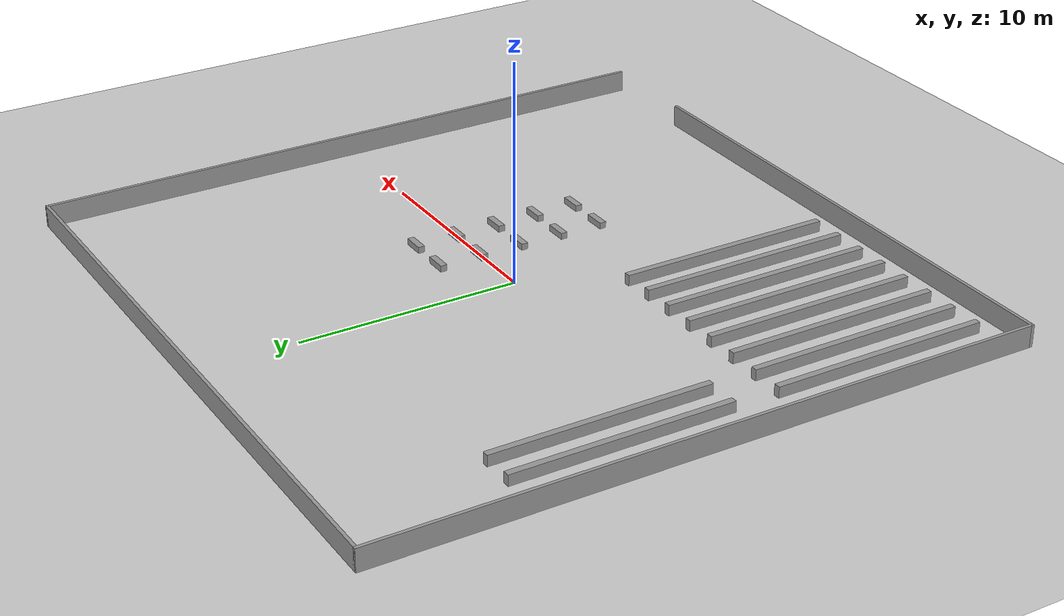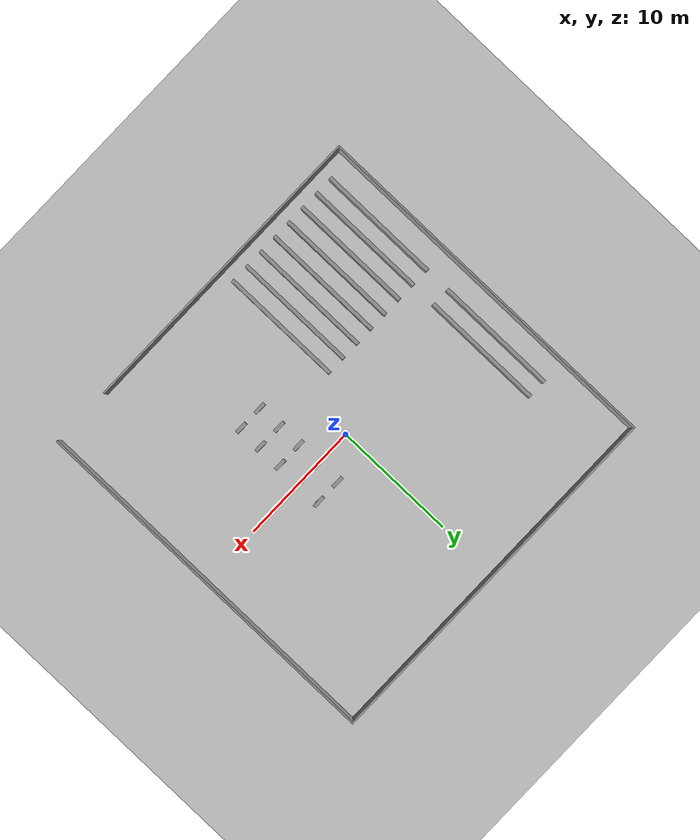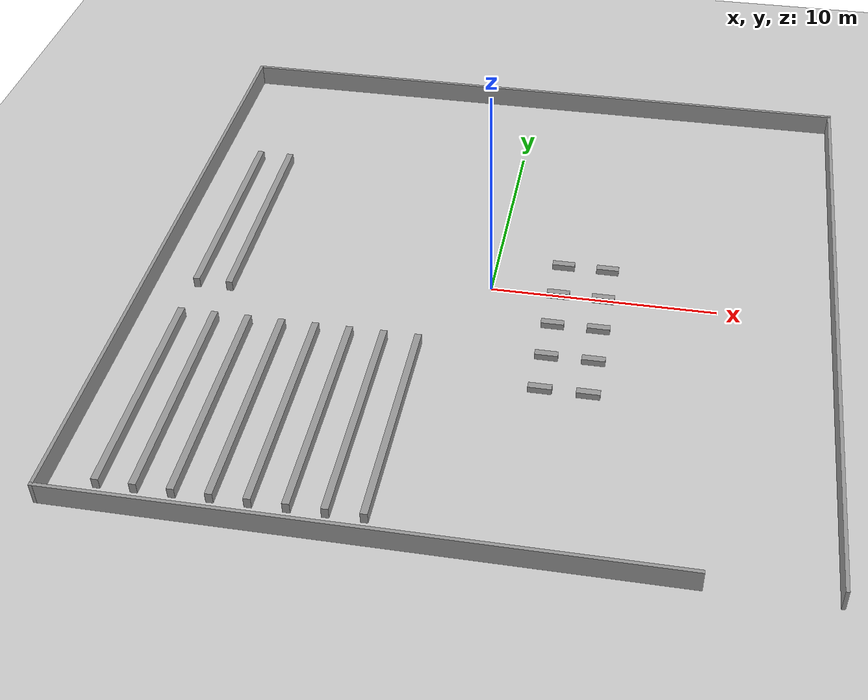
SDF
<sdf version="1.6">
 <world name="default">
  <model name="ground_plane">
   <static>1</static>
   <link name="link">
    <collision name="collision">
     <geometry><plane><normal>0 0 1</normal><size>100 100</size></plane></geometry>
     <surface><friction><ode><mu>100</mu><mu2>50</mu2></ode></friction></surface>
    </collision>
    <visual name="visual">
     <cast_shadows>0</cast_shadows>
     <geometry><plane><normal>0 0 1</normal><size>100 100</size></plane></geometry>
     <material>
      <script><uri>file://media/materials/scripts/gazebo.material</uri><name>Gazebo/Grey</name></script>
     </material>
    </visual>
   </link>
  </model>
  <model name="w1">
   <link name="Wall_0">
    <collision name="Wall_0_Collision">
     <geometry><box><size>25.15 0.15 1</size></box></geometry>
     <pose>0 0 0.5 0 -0 0</pose>
    </collision>
    <visual name="Wall_0_Visual">
     <pose>0 0 0.5 0 -0 0</pose>
     <geometry><box><size>25.15 0.15 1</size></box></geometry>
     <material>
      <script><uri>file://media/materials/scripts/gazebo.material</uri><name>Gazebo/Grey</name></script>
      <ambient>1 1 1 1</ambient>
     </material>
    </visual>
    <pose>-2.5 -15 0 0 -0 3.14159</pose>
   </link>
   <link name="Wall_1">
    <collision name="Wall_1_Collision">
     <geometry><box><size>30.15 0.15 1</size></box></geometry>
     <pose>0 0 0.5 0 -0 0</pose>
    </collision>
    <visual name="Wall_1_Visual">
     <pose>0 0 0.5 0 -0 0</pose>
     <geometry><box><size>30.15 0.15 1</size></box></geometry>
     <material>
      <script><uri>file://media/materials/scripts/gazebo.material</uri><name>Gazebo/Grey</name></script>
      <ambient>1 1 1 1</ambient>
     </material>
    </visual>
    <pose>-15 0 0 0 -0 1.5708</pose>
   </link>
   <link name="Wall_2">
    <collision name="Wall_2_Collision">
     <geometry><box><size>30.15 0.15 1</size></box></geometry>
     <pose>0 0 0.5 0 -0 0</pose>
    </collision>
    <visual name="Wall_2_Visual">
     <pose>0 0 0.5 0 -0 0</pose>
     <geometry><box><size>30.15 0.15 1</size></box></geometry>
     <material>
      <script><uri>file://media/materials/scripts/gazebo.material</uri><name>Gazebo/Grey</name></script>
      <ambient>1 1 1 1</ambient>
     </material>
    </visual>
    <pose>0 15 0 0 -0 0</pose>
   </link>
   <link name="Wall_3">
    <collision name="Wall_3_Collision">
     <geometry><box><size>30.15 0.15 1</size></box></geometry>
     <pose>0 0 0.5 0 -0 0</pose>
    </collision>
    <visual name="Wall_3_Visual">
     <pose>0 0 0.5 0 -0 0</pose>
     <geometry><box><size>30.15 0.15 1</size></box></geometry>
     <material>
      <script><uri>file://media/materials/scripts/gazebo.material</uri><name>Gazebo/Grey</name></script>
      <ambient>1 1 1 1</ambient>
     </material>
    </visual>
    <pose>15 0 0 0 0 -1.5708</pose>
   </link>
   <static>1</static>
  </model>
  <model name="ss1_clone_1_0">
   <link name="link_0">
    <inertial>
     <mass>1</mass>
     <inertia>
      <ixx>0.166667</ixx>
      <ixy>0</ixy>
      <ixz>0</ixz>
      <iyy>0.166667</iyy>
      <iyz>0</iyz>
      <izz>0.166667</izz>
     </inertia>
    </inertial>
    <visual name="visual">
     <geometry><box><size>0.3 10 0.5</size></box></geometry>
     <material>
      <lighting>1</lighting>
      <script><uri>file://media/materials/scripts/gazebo.material</uri><name>Gazebo/Grey</name></script>
      <ambient>0.3 0.3 0.3 1</ambient>
      <diffuse>0.7 0.7 0.7 1</diffuse>
      <specular>0.01 0.01 0.01 1</specular>
      <emissive>0 0 0 1</emissive>
      <shader type="vertex"><normal_map>__default__</normal_map></shader>
     </material>
    </visual>
    <collision name="collision">
     <geometry><box><size>0.3 10 0.5</size></box></geometry>
     <surface>
      <friction>
       <ode><mu>1</mu><mu2>1</mu2><fdir1>0 0 0</fdir1><slip1>0</slip1><slip2>0</slip2></ode>
       <torsional>
        <coefficient>1</coefficient>
        <patch_radius>0</patch_radius>
        <surface_radius>0</surface_radius>
        <use_patch_radius>1</use_patch_radius>
        <ode><slip>0</slip></ode>
       </torsional>
      </friction>
      <bounce><restitution_coefficient>0</restitution_coefficient><threshold>1e+06</threshold></bounce>
      <contact>
       <collide_without_contact>0</collide_without_contact>
       <collide_without_contact_bitmask>1</collide_without_contact_bitmask>
       <collide_bitmask>1</collide_bitmask>
       <ode>
        <soft_cfm>0</soft_cfm>
        <soft_erp>0.2</soft_erp>
        <kp>1e+13</kp>
        <kd>1</kd>
        <max_vel>0.01</max_vel>
        <min_depth>0</min_depth>
       </ode>
       <bullet>
        <split_impulse>1</split_impulse>
        <split_impulse_penetration_threshold>-0.01</split_impulse_penetration_threshold>
        <soft_cfm>0</soft_cfm>
        <soft_erp>0.2</soft_erp>
        <kp>1e+13</kp>
        <kd>1</kd>
       </bullet>
      </contact>
     </surface>
    </collision>
   </link>
   <static>0</static>
   <pose>-13 -9 0.25 0 -0 0</pose>
  </model>
  <model name="ss1_clone_1_0_clone_0">
   <link name="link_0">
    <inertial>
     <mass>1</mass>
     <inertia>
      <ixx>0.166667</ixx>
      <ixy>0</ixy>
      <ixz>0</ixz>
      <iyy>0.166667</iyy>
      <iyz>0</iyz>
      <izz>0.166667</izz>
     </inertia>
    </inertial>
    <visual name="visual">
     <geometry><box><size>0.3 10 0.5</size></box></geometry>
     <material>
      <lighting>1</lighting>
      <script><uri>file://media/materials/scripts/gazebo.material</uri><name>Gazebo/Grey</name></script>
      <ambient>0.3 0.3 0.3 1</ambient>
      <diffuse>0.7 0.7 0.7 1</diffuse>
      <specular>0.01 0.01 0.01 1</specular>
      <emissive>0 0 0 1</emissive>
      <shader type="vertex"><normal_map>__default__</normal_map></shader>
     </material>
    </visual>
    <collision name="collision">
     <geometry><box><size>0.3 10 0.5</size></box></geometry>
     <surface>
      <friction>
       <ode><mu>1</mu><mu2>1</mu2><fdir1>0 0 0</fdir1><slip1>0</slip1><slip2>0</slip2></ode>
       <torsional>
        <coefficient>1</coefficient>
        <patch_radius>0</patch_radius>
        <surface_radius>0</surface_radius>
        <use_patch_radius>1</use_patch_radius>
        <ode><slip>0</slip></ode>
       </torsional>
      </friction>
      <bounce><restitution_coefficient>0</restitution_coefficient><threshold>1e+06</threshold></bounce>
      <contact>
       <collide_without_contact>0</collide_without_contact>
       <collide_without_contact_bitmask>1</collide_without_contact_bitmask>
       <collide_bitmask>1</collide_bitmask>
       <ode>
        <soft_cfm>0</soft_cfm>
        <soft_erp>0.2</soft_erp>
        <kp>1e+13</kp>
        <kd>1</kd>
        <max_vel>0.01</max_vel>
        <min_depth>0</min_depth>
       </ode>
       <bullet>
        <split_impulse>1</split_impulse>
        <split_impulse_penetration_threshold>-0.01</split_impulse_penetration_threshold>
        <soft_cfm>0</soft_cfm>
        <soft_erp>0.2</soft_erp>
        <kp>1e+13</kp>
        <kd>1</kd>
       </bullet>
      </contact>
     </surface>
    </collision>
   </link>
   <static>0</static>
   <pose>-11.5 -9 0.25 0 -0 0</pose>
  </model>
  <model name="ss1_clone_1_0_clone_1">
   <link name="link_0">
    <inertial>
     <mass>1</mass>
     <inertia>
      <ixx>0.166667</ixx>
      <ixy>0</ixy>
      <ixz>0</ixz>
      <iyy>0.166667</iyy>
      <iyz>0</iyz>
      <izz>0.166667</izz>
     </inertia>
    </inertial>
    <visual name="visual">
     <geometry><box><size>0.3 10 0.5</size></box></geometry>
     <material>
      <lighting>1</lighting>
      <script><uri>file://media/materials/scripts/gazebo.material</uri><name>Gazebo/Grey</name></script>
      <ambient>0.3 0.3 0.3 1</ambient>
      <diffuse>0.7 0.7 0.7 1</diffuse>
      <specular>0.01 0.01 0.01 1</specular>
      <emissive>0 0 0 1</emissive>
      <shader type="vertex"><normal_map>__default__</normal_map></shader>
     </material>
    </visual>
    <collision name="collision">
     <geometry><box><size>0.3 10 0.5</size></box></geometry>
     <surface>
      <friction>
       <ode><mu>1</mu><mu2>1</mu2><fdir1>0 0 0</fdir1><slip1>0</slip1><slip2>0</slip2></ode>
       <torsional>
        <coefficient>1</coefficient>
        <patch_radius>0</patch_radius>
        <surface_radius>0</surface_radius>
        <use_patch_radius>1</use_patch_radius>
        <ode><slip>0</slip></ode>
       </torsional>
      </friction>
      <bounce><restitution_coefficient>0</restitution_coefficient><threshold>1e+06</threshold></bounce>
      <contact>
       <collide_without_contact>0</collide_without_contact>
       <collide_without_contact_bitmask>1</collide_without_contact_bitmask>
       <collide_bitmask>1</collide_bitmask>
       <ode>
        <soft_cfm>0</soft_cfm>
        <soft_erp>0.2</soft_erp>
        <kp>1e+13</kp>
        <kd>1</kd>
        <max_vel>0.01</max_vel>
        <min_depth>0</min_depth>
       </ode>
       <bullet>
        <split_impulse>1</split_impulse>
        <split_impulse_penetration_threshold>-0.01</split_impulse_penetration_threshold>
        <soft_cfm>0</soft_cfm>
        <soft_erp>0.2</soft_erp>
        <kp>1e+13</kp>
        <kd>1</kd>
       </bullet>
      </contact>
     </surface>
    </collision>
   </link>
   <static>0</static>
   <pose>-11.5 3 0.25 0 -0 0</pose>
  </model>
  <model name="ss1_clone_1_0_clone_8">
   <link name="link_0">
    <inertial>
     <mass>1</mass>
     <inertia>
      <ixx>0.166667</ixx>
      <ixy>0</ixy>
      <ixz>0</ixz>
      <iyy>0.166667</iyy>
      <iyz>0</iyz>
      <izz>0.166667</izz>
     </inertia>
    </inertial>
    <visual name="visual">
     <geometry><box><size>0.3 10 0.5</size></box></geometry>
     <material>
      <lighting>1</lighting>
      <script><uri>file://media/materials/scripts/gazebo.material</uri><name>Gazebo/Grey</name></script>
      <ambient>0.3 0.3 0.3 1</ambient>
      <diffuse>0.7 0.7 0.7 1</diffuse>
      <specular>0.01 0.01 0.01 1</specular>
      <emissive>0 0 0 1</emissive>
      <shader type="vertex"><normal_map>__default__</normal_map></shader>
     </material>
    </visual>
    <collision name="collision">
     <geometry><box><size>0.3 10 0.5</size></box></geometry>
     <surface>
      <friction>
       <ode><mu>1</mu><mu2>1</mu2><fdir1>0 0 0</fdir1><slip1>0</slip1><slip2>0</slip2></ode>
       <torsional>
        <coefficient>1</coefficient>
        <patch_radius>0</patch_radius>
        <surface_radius>0</surface_radius>
        <use_patch_radius>1</use_patch_radius>
        <ode><slip>0</slip></ode>
       </torsional>
      </friction>
      <bounce><restitution_coefficient>0</restitution_coefficient><threshold>1e+06</threshold></bounce>
      <contact>
       <collide_without_contact>0</collide_without_contact>
       <collide_without_contact_bitmask>1</collide_without_contact_bitmask>
       <collide_bitmask>1</collide_bitmask>
       <ode>
        <soft_cfm>0</soft_cfm>
        <soft_erp>0.2</soft_erp>
        <kp>1e+13</kp>
        <kd>1</kd>
        <max_vel>0.01</max_vel>
        <min_depth>0</min_depth>
       </ode>
       <bullet>
        <split_impulse>1</split_impulse>
        <split_impulse_penetration_threshold>-0.01</split_impulse_penetration_threshold>
        <soft_cfm>0</soft_cfm>
        <soft_erp>0.2</soft_erp>
        <kp>1e+13</kp>
        <kd>1</kd>
       </bullet>
      </contact>
     </surface>
    </collision>
   </link>
   <static>0</static>
   <pose>-10 -9 0.25 0 -0 0</pose>
  </model>
  <model name="ss1_clone_1_0_clone_9">
   <link name="link_0">
    <inertial>
     <mass>1</mass>
     <inertia>
      <ixx>0.166667</ixx>
      <ixy>0</ixy>
      <ixz>0</ixz>
      <iyy>0.166667</iyy>
      <iyz>0</iyz>
      <izz>0.166667</izz>
     </inertia>
    </inertial>
    <visual name="visual">
     <geometry><box><size>0.3 10 0.5</size></box></geometry>
     <material>
      <lighting>1</lighting>
      <script><uri>file://media/materials/scripts/gazebo.material</uri><name>Gazebo/Grey</name></script>
      <ambient>0.3 0.3 0.3 1</ambient>
      <diffuse>0.7 0.7 0.7 1</diffuse>
      <specular>0.01 0.01 0.01 1</specular>
      <emissive>0 0 0 1</emissive>
      <shader type="vertex"><normal_map>__default__</normal_map></shader>
     </material>
    </visual>
    <collision name="collision">
     <geometry><box><size>0.3 10 0.5</size></box></geometry>
     <surface>
      <friction>
       <ode><mu>1</mu><mu2>1</mu2><fdir1>0 0 0</fdir1><slip1>0</slip1><slip2>0</slip2></ode>
       <torsional>
        <coefficient>1</coefficient>
        <patch_radius>0</patch_radius>
        <surface_radius>0</surface_radius>
        <use_patch_radius>1</use_patch_radius>
        <ode><slip>0</slip></ode>
       </torsional>
      </friction>
      <bounce><restitution_coefficient>0</restitution_coefficient><threshold>1e+06</threshold></bounce>
      <contact>
       <collide_without_contact>0</collide_without_contact>
       <collide_without_contact_bitmask>1</collide_without_contact_bitmask>
       <collide_bitmask>1</collide_bitmask>
       <ode>
        <soft_cfm>0</soft_cfm>
        <soft_erp>0.2</soft_erp>
        <kp>1e+13</kp>
        <kd>1</kd>
        <max_vel>0.01</max_vel>
        <min_depth>0</min_depth>
       </ode>
       <bullet>
        <split_impulse>1</split_impulse>
        <split_impulse_penetration_threshold>-0.01</split_impulse_penetration_threshold>
        <soft_cfm>0</soft_cfm>
        <soft_erp>0.2</soft_erp>
        <kp>1e+13</kp>
        <kd>1</kd>
       </bullet>
      </contact>
     </surface>
    </collision>
   </link>
   <static>0</static>
   <pose>-8.5 -9 0.25 0 -0 0</pose>
  </model>
  <model name="ss1_clone_1_0_clone_10">
   <link name="link_0">
    <inertial>
     <mass>1</mass>
     <inertia>
      <ixx>0.166667</ixx>
      <ixy>0</ixy>
      <ixz>0</ixz>
      <iyy>0.166667</iyy>
      <iyz>0</iyz>
      <izz>0.166667</izz>
     </inertia>
    </inertial>
    <visual name="visual">
     <geometry><box><size>0.3 10 0.5</size></box></geometry>
     <material>
      <lighting>1</lighting>
      <script><uri>file://media/materials/scripts/gazebo.material</uri><name>Gazebo/Grey</name></script>
      <ambient>0.3 0.3 0.3 1</ambient>
      <diffuse>0.7 0.7 0.7 1</diffuse>
      <specular>0.01 0.01 0.01 1</specular>
      <emissive>0 0 0 1</emissive>
      <shader type="vertex"><normal_map>__default__</normal_map></shader>
     </material>
    </visual>
    <collision name="collision">
     <geometry><box><size>0.3 10 0.5</size></box></geometry>
     <surface>
      <friction>
       <ode><mu>1</mu><mu2>1</mu2><fdir1>0 0 0</fdir1><slip1>0</slip1><slip2>0</slip2></ode>
       <torsional>
        <coefficient>1</coefficient>
        <patch_radius>0</patch_radius>
        <surface_radius>0</surface_radius>
        <use_patch_radius>1</use_patch_radius>
        <ode><slip>0</slip></ode>
       </torsional>
      </friction>
      <bounce><restitution_coefficient>0</restitution_coefficient><threshold>1e+06</threshold></bounce>
      <contact>
       <collide_without_contact>0</collide_without_contact>
       <collide_without_contact_bitmask>1</collide_without_contact_bitmask>
       <collide_bitmask>1</collide_bitmask>
       <ode>
        <soft_cfm>0</soft_cfm>
        <soft_erp>0.2</soft_erp>
        <kp>1e+13</kp>
        <kd>1</kd>
        <max_vel>0.01</max_vel>
        <min_depth>0</min_depth>
       </ode>
       <bullet>
        <split_impulse>1</split_impulse>
        <split_impulse_penetration_threshold>-0.01</split_impulse_penetration_threshold>
        <soft_cfm>0</soft_cfm>
        <soft_erp>0.2</soft_erp>
        <kp>1e+13</kp>
        <kd>1</kd>
       </bullet>
      </contact>
     </surface>
    </collision>
   </link>
   <static>0</static>
   <pose>-7 -9 0.25 0 -0 0</pose>
  </model>
  <model name="ss1_clone_1_0_clone_11">
   <link name="link_0">
    <inertial>
     <mass>1</mass>
     <inertia>
      <ixx>0.166667</ixx>
      <ixy>0</ixy>
      <ixz>0</ixz>
      <iyy>0.166667</iyy>
      <iyz>0</iyz>
      <izz>0.166667</izz>
     </inertia>
    </inertial>
    <visual name="visual">
     <geometry><box><size>0.3 10 0.5</size></box></geometry>
     <material>
      <lighting>1</lighting>
      <script><uri>file://media/materials/scripts/gazebo.material</uri><name>Gazebo/Grey</name></script>
      <ambient>0.3 0.3 0.3 1</ambient>
      <diffuse>0.7 0.7 0.7 1</diffuse>
      <specular>0.01 0.01 0.01 1</specular>
      <emissive>0 0 0 1</emissive>
      <shader type="vertex"><normal_map>__default__</normal_map></shader>
     </material>
    </visual>
    <collision name="collision">
     <geometry><box><size>0.3 10 0.5</size></box></geometry>
     <surface>
      <friction>
       <ode><mu>1</mu><mu2>1</mu2><fdir1>0 0 0</fdir1><slip1>0</slip1><slip2>0</slip2></ode>
       <torsional>
        <coefficient>1</coefficient>
        <patch_radius>0</patch_radius>
        <surface_radius>0</surface_radius>
        <use_patch_radius>1</use_patch_radius>
        <ode><slip>0</slip></ode>
       </torsional>
      </friction>
      <bounce><restitution_coefficient>0</restitution_coefficient><threshold>1e+06</threshold></bounce>
      <contact>
       <collide_without_contact>0</collide_without_contact>
       <collide_without_contact_bitmask>1</collide_without_contact_bitmask>
       <collide_bitmask>1</collide_bitmask>
       <ode>
        <soft_cfm>0</soft_cfm>
        <soft_erp>0.2</soft_erp>
        <kp>1e+13</kp>
        <kd>1</kd>
        <max_vel>0.01</max_vel>
        <min_depth>0</min_depth>
       </ode>
       <bullet>
        <split_impulse>1</split_impulse>
        <split_impulse_penetration_threshold>-0.01</split_impulse_penetration_threshold>
        <soft_cfm>0</soft_cfm>
        <soft_erp>0.2</soft_erp>
        <kp>1e+13</kp>
        <kd>1</kd>
       </bullet>
      </contact>
     </surface>
    </collision>
   </link>
   <static>0</static>
   <pose>-5.5 -9 0.25 0 -0 0</pose>
  </model>
  <model name="ss1_clone_1_0_clone_12">
   <link name="link_0">
    <inertial>
     <mass>1</mass>
     <inertia>
      <ixx>0.166667</ixx>
      <ixy>0</ixy>
      <ixz>0</ixz>
      <iyy>0.166667</iyy>
      <iyz>0</iyz>
      <izz>0.166667</izz>
     </inertia>
    </inertial>
    <visual name="visual">
     <geometry><box><size>0.3 10 0.5</size></box></geometry>
     <material>
      <lighting>1</lighting>
      <script><uri>file://media/materials/scripts/gazebo.material</uri><name>Gazebo/Grey</name></script>
      <ambient>0.3 0.3 0.3 1</ambient>
      <diffuse>0.7 0.7 0.7 1</diffuse>
      <specular>0.01 0.01 0.01 1</specular>
      <emissive>0 0 0 1</emissive>
      <shader type="vertex"><normal_map>__default__</normal_map></shader>
     </material>
    </visual>
    <collision name="collision">
     <geometry><box><size>0.3 10 0.5</size></box></geometry>
     <surface>
      <friction>
       <ode><mu>1</mu><mu2>1</mu2><fdir1>0 0 0</fdir1><slip1>0</slip1><slip2>0</slip2></ode>
       <torsional>
        <coefficient>1</coefficient>
        <patch_radius>0</patch_radius>
        <surface_radius>0</surface_radius>
        <use_patch_radius>1</use_patch_radius>
        <ode><slip>0</slip></ode>
       </torsional>
      </friction>
      <bounce><restitution_coefficient>0</restitution_coefficient><threshold>1e+06</threshold></bounce>
      <contact>
       <collide_without_contact>0</collide_without_contact>
       <collide_without_contact_bitmask>1</collide_without_contact_bitmask>
       <collide_bitmask>1</collide_bitmask>
       <ode>
        <soft_cfm>0</soft_cfm>
        <soft_erp>0.2</soft_erp>
        <kp>1e+13</kp>
        <kd>1</kd>
        <max_vel>0.01</max_vel>
        <min_depth>0</min_depth>
       </ode>
       <bullet>
        <split_impulse>1</split_impulse>
        <split_impulse_penetration_threshold>-0.01</split_impulse_penetration_threshold>
        <soft_cfm>0</soft_cfm>
        <soft_erp>0.2</soft_erp>
        <kp>1e+13</kp>
        <kd>1</kd>
       </bullet>
      </contact>
     </surface>
    </collision>
   </link>
   <static>0</static>
   <pose>-4 -9 0.25 0 -0 0</pose>
  </model>
  <model name="ss1_clone_1_0_clone_13">
   <link name="link_0">
    <inertial>
     <mass>1</mass>
     <inertia>
      <ixx>0.166667</ixx>
      <ixy>0</ixy>
      <ixz>0</ixz>
      <iyy>0.166667</iyy>
      <iyz>0</iyz>
      <izz>0.166667</izz>
     </inertia>
    </inertial>
    <visual name="visual">
     <geometry><box><size>0.3 10 0.5</size></box></geometry>
     <material>
      <lighting>1</lighting>
      <script><uri>file://media/materials/scripts/gazebo.material</uri><name>Gazebo/Grey</name></script>
      <ambient>0.3 0.3 0.3 1</ambient>
      <diffuse>0.7 0.7 0.7 1</diffuse>
      <specular>0.01 0.01 0.01 1</specular>
      <emissive>0 0 0 1</emissive>
      <shader type="vertex"><normal_map>__default__</normal_map></shader>
     </material>
    </visual>
    <collision name="collision">
     <geometry><box><size>0.3 10 0.5</size></box></geometry>
     <surface>
      <friction>
       <ode><mu>1</mu><mu2>1</mu2><fdir1>0 0 0</fdir1><slip1>0</slip1><slip2>0</slip2></ode>
       <torsional>
        <coefficient>1</coefficient>
        <patch_radius>0</patch_radius>
        <surface_radius>0</surface_radius>
        <use_patch_radius>1</use_patch_radius>
        <ode><slip>0</slip></ode>
       </torsional>
      </friction>
      <bounce><restitution_coefficient>0</restitution_coefficient><threshold>1e+06</threshold></bounce>
      <contact>
       <collide_without_contact>0</collide_without_contact>
       <collide_without_contact_bitmask>1</collide_without_contact_bitmask>
       <collide_bitmask>1</collide_bitmask>
       <ode>
        <soft_cfm>0</soft_cfm>
        <soft_erp>0.2</soft_erp>
        <kp>1e+13</kp>
        <kd>1</kd>
        <max_vel>0.01</max_vel>
        <min_depth>0</min_depth>
       </ode>
       <bullet>
        <split_impulse>1</split_impulse>
        <split_impulse_penetration_threshold>-0.01</split_impulse_penetration_threshold>
        <soft_cfm>0</soft_cfm>
        <soft_erp>0.2</soft_erp>
        <kp>1e+13</kp>
        <kd>1</kd>
       </bullet>
      </contact>
     </surface>
    </collision>
   </link>
   <static>0</static>
   <pose>-2.5 -9 0.25 0 -0 0</pose>
  </model>
  <model name="ss1_clone_1_0_clone_14">
   <link name="link_0">
    <inertial>
     <mass>100</mass>
     <inertia>
      <ixx>0.166667</ixx>
      <ixy>0</ixy>
      <ixz>0</ixz>
      <iyy>0.166667</iyy>
      <iyz>0</iyz>
      <izz>0.166667</izz>
     </inertia>
    </inertial>
    <visual name="visual">
     <geometry><box><size>0.3 10 0.5</size></box></geometry>
     <material>
      <lighting>1</lighting>
      <script><uri>file://media/materials/scripts/gazebo.material</uri><name>Gazebo/Grey</name></script>
      <ambient>0.3 0.3 0.3 1</ambient>
      <diffuse>0.7 0.7 0.7 1</diffuse>
      <specular>0.01 0.01 0.01 1</specular>
      <emissive>0 0 0 1</emissive>
      <shader type="vertex"><normal_map>__default__</normal_map></shader>
     </material>
    </visual>
    <collision name="collision">
     <geometry><box><size>0.3 10 0.5</size></box></geometry>
     <surface>
      <friction>
       <ode><mu>1</mu><mu2>1</mu2><fdir1>0 0 0</fdir1><slip1>0</slip1><slip2>0</slip2></ode>
       <torsional>
        <coefficient>1</coefficient>
        <patch_radius>0</patch_radius>
        <surface_radius>0</surface_radius>
        <use_patch_radius>1</use_patch_radius>
        <ode><slip>0</slip></ode>
       </torsional>
      </friction>
      <bounce><restitution_coefficient>0</restitution_coefficient><threshold>1e+06</threshold></bounce>
      <contact>
       <collide_without_contact>0</collide_without_contact>
       <collide_without_contact_bitmask>1</collide_without_contact_bitmask>
       <collide_bitmask>1</collide_bitmask>
       <ode>
        <soft_cfm>0</soft_cfm>
        <soft_erp>0.2</soft_erp>
        <kp>1e+13</kp>
        <kd>1</kd>
        <max_vel>0.01</max_vel>
        <min_depth>0</min_depth>
       </ode>
       <bullet>
        <split_impulse>1</split_impulse>
        <split_impulse_penetration_threshold>-0.01</split_impulse_penetration_threshold>
        <soft_cfm>0</soft_cfm>
        <soft_erp>0.2</soft_erp>
        <kp>1e+13</kp>
        <kd>1</kd>
       </bullet>
      </contact>
     </surface>
    </collision>
   </link>
   <static>0</static>
   <pose>-13 3 0.25 0 -0 0</pose>
  </model>
  <model name="ss1_0_clone">
   <link name="link_0">
    <inertial>
     <mass>1</mass>
     <inertia>
      <ixx>0.166667</ixx>
      <ixy>0</ixy>
      <ixz>0</ixz>
      <iyy>0.166667</iyy>
      <iyz>0</iyz>
      <izz>0.166667</izz>
     </inertia>
    </inertial>
    <visual name="visual">
     <geometry><box><size>0.3 1 0.5</size></box></geometry>
     <material>
      <lighting>1</lighting>
      <script><uri>file://media/materials/scripts/gazebo.material</uri><name>Gazebo/Grey</name></script>
      <ambient>0.3 0.3 0.3 1</ambient>
      <diffuse>0.7 0.7 0.7 1</diffuse>
      <specular>0.01 0.01 0.01 1</specular>
      <emissive>0 0 0 1</emissive>
      <shader type="vertex"><normal_map>__default__</normal_map></shader>
     </material>
    </visual>
    <collision name="collision">
     <geometry><box><size>0.3 1 0.5</size></box></geometry>
     <surface>
      <friction>
       <ode><mu>1</mu><mu2>1</mu2><fdir1>0 0 0</fdir1><slip1>0</slip1><slip2>0</slip2></ode>
       <torsional>
        <coefficient>1</coefficient>
        <patch_radius>0</patch_radius>
        <surface_radius>0</surface_radius>
        <use_patch_radius>1</use_patch_radius>
        <ode><slip>0</slip></ode>
       </torsional>
      </friction>
      <bounce><restitution_coefficient>0</restitution_coefficient><threshold>1e+06</threshold></bounce>
      <contact>
       <collide_without_contact>0</collide_without_contact>
       <collide_without_contact_bitmask>1</collide_without_contact_bitmask>
       <collide_bitmask>1</collide_bitmask>
       <ode>
        <soft_cfm>0</soft_cfm>
        <soft_erp>0.2</soft_erp>
        <kp>1e+13</kp>
        <kd>1</kd>
        <max_vel>0.01</max_vel>
        <min_depth>0</min_depth>
       </ode>
       <bullet>
        <split_impulse>1</split_impulse>
        <split_impulse_penetration_threshold>-0.01</split_impulse_penetration_threshold>
        <soft_cfm>0</soft_cfm>
        <soft_erp>0.2</soft_erp>
        <kp>1e+13</kp>
        <kd>1</kd>
       </bullet>
      </contact>
     </surface>
    </collision>
   </link>
   <static>0</static>
   <pose>3 -6 0 0 -0 1.5708</pose>
  </model>
  <model name="ss1_0_clone_0">
   <link name="link_0">
    <inertial>
     <mass>1</mass>
     <inertia>
      <ixx>0.166667</ixx>
      <ixy>0</ixy>
      <ixz>0</ixz>
      <iyy>0.166667</iyy>
      <iyz>0</iyz>
      <izz>0.166667</izz>
     </inertia>
    </inertial>
    <visual name="visual">
     <geometry><box><size>0.3 1 0.5</size></box></geometry>
     <material>
      <lighting>1</lighting>
      <script><uri>file://media/materials/scripts/gazebo.material</uri><name>Gazebo/Grey</name></script>
      <ambient>0.3 0.3 0.3 1</ambient>
      <diffuse>0.7 0.7 0.7 1</diffuse>
      <specular>0.01 0.01 0.01 1</specular>
      <emissive>0 0 0 1</emissive>
      <shader type="vertex"><normal_map>__default__</normal_map></shader>
     </material>
    </visual>
    <collision name="collision">
     <geometry><box><size>0.3 1 0.5</size></box></geometry>
     <surface>
      <friction>
       <ode><mu>1</mu><mu2>1</mu2><fdir1>0 0 0</fdir1><slip1>0</slip1><slip2>0</slip2></ode>
       <torsional>
        <coefficient>1</coefficient>
        <patch_radius>0</patch_radius>
        <surface_radius>0</surface_radius>
        <use_patch_radius>1</use_patch_radius>
        <ode><slip>0</slip></ode>
       </torsional>
      </friction>
      <bounce><restitution_coefficient>0</restitution_coefficient><threshold>1e+06</threshold></bounce>
      <contact>
       <collide_without_contact>0</collide_without_contact>
       <collide_without_contact_bitmask>1</collide_without_contact_bitmask>
       <collide_bitmask>1</collide_bitmask>
       <ode>
        <soft_cfm>0</soft_cfm>
        <soft_erp>0.2</soft_erp>
        <kp>1e+13</kp>
        <kd>1</kd>
        <max_vel>0.01</max_vel>
        <min_depth>0</min_depth>
       </ode>
       <bullet>
        <split_impulse>1</split_impulse>
        <split_impulse_penetration_threshold>-0.01</split_impulse_penetration_threshold>
        <soft_cfm>0</soft_cfm>
        <soft_erp>0.2</soft_erp>
        <kp>1e+13</kp>
        <kd>1</kd>
       </bullet>
      </contact>
     </surface>
    </collision>
   </link>
   <static>0</static>
   <pose>5 -6 0 0 -0 1.5708</pose>
  </model>
  <model name="ss1_0_clone_clone">
   <link name="link_0">
    <inertial>
     <mass>1</mass>
     <inertia>
      <ixx>0.166667</ixx>
      <ixy>0</ixy>
      <ixz>0</ixz>
      <iyy>0.166667</iyy>
      <iyz>0</iyz>
      <izz>0.166667</izz>
     </inertia>
    </inertial>
    <visual name="visual">
     <geometry><box><size>0.3 1 0.5</size></box></geometry>
     <material>
      <lighting>1</lighting>
      <script><uri>file://media/materials/scripts/gazebo.material</uri><name>Gazebo/Grey</name></script>
      <ambient>0.3 0.3 0.3 1</ambient>
      <diffuse>0.7 0.7 0.7 1</diffuse>
      <specular>0.01 0.01 0.01 1</specular>
      <emissive>0 0 0 1</emissive>
      <shader type="vertex"><normal_map>__default__</normal_map></shader>
     </material>
    </visual>
    <collision name="collision">
     <geometry><box><size>0.3 1 0.5</size></box></geometry>
     <surface>
      <friction>
       <ode><mu>1</mu><mu2>1</mu2><fdir1>0 0 0</fdir1><slip1>0</slip1><slip2>0</slip2></ode>
       <torsional>
        <coefficient>1</coefficient>
        <patch_radius>0</patch_radius>
        <surface_radius>0</surface_radius>
        <use_patch_radius>1</use_patch_radius>
        <ode><slip>0</slip></ode>
       </torsional>
      </friction>
      <bounce><restitution_coefficient>0</restitution_coefficient><threshold>1e+06</threshold></bounce>
      <contact>
       <collide_without_contact>0</collide_without_contact>
       <collide_without_contact_bitmask>1</collide_without_contact_bitmask>
       <collide_bitmask>1</collide_bitmask>
       <ode>
        <soft_cfm>0</soft_cfm>
        <soft_erp>0.2</soft_erp>
        <kp>1e+13</kp>
        <kd>1</kd>
        <max_vel>0.01</max_vel>
        <min_depth>0</min_depth>
       </ode>
       <bullet>
        <split_impulse>1</split_impulse>
        <split_impulse_penetration_threshold>-0.01</split_impulse_penetration_threshold>
        <soft_cfm>0</soft_cfm>
        <soft_erp>0.2</soft_erp>
        <kp>1e+13</kp>
        <kd>1</kd>
       </bullet>
      </contact>
     </surface>
    </collision>
   </link>
   <static>0</static>
   <pose>3 -4 0 0 -0 1.5708</pose>
  </model>
  <model name="ss1_0_clone_clone_0">
   <link name="link_0">
    <inertial>
     <mass>1</mass>
     <inertia>
      <ixx>0.166667</ixx>
      <ixy>0</ixy>
      <ixz>0</ixz>
      <iyy>0.166667</iyy>
      <iyz>0</iyz>
      <izz>0.166667</izz>
     </inertia>
    </inertial>
    <visual name="visual">
     <geometry><box><size>0.3 1 0.5</size></box></geometry>
     <material>
      <lighting>1</lighting>
      <script><uri>file://media/materials/scripts/gazebo.material</uri><name>Gazebo/Grey</name></script>
      <ambient>0.3 0.3 0.3 1</ambient>
      <diffuse>0.7 0.7 0.7 1</diffuse>
      <specular>0.01 0.01 0.01 1</specular>
      <emissive>0 0 0 1</emissive>
      <shader type="vertex"><normal_map>__default__</normal_map></shader>
     </material>
    </visual>
    <collision name="collision">
     <geometry><box><size>0.3 1 0.5</size></box></geometry>
     <surface>
      <friction>
       <ode><mu>1</mu><mu2>1</mu2><fdir1>0 0 0</fdir1><slip1>0</slip1><slip2>0</slip2></ode>
       <torsional>
        <coefficient>1</coefficient>
        <patch_radius>0</patch_radius>
        <surface_radius>0</surface_radius>
        <use_patch_radius>1</use_patch_radius>
        <ode><slip>0</slip></ode>
       </torsional>
      </friction>
      <bounce><restitution_coefficient>0</restitution_coefficient><threshold>1e+06</threshold></bounce>
      <contact>
       <collide_without_contact>0</collide_without_contact>
       <collide_without_contact_bitmask>1</collide_without_contact_bitmask>
       <collide_bitmask>1</collide_bitmask>
       <ode>
        <soft_cfm>0</soft_cfm>
        <soft_erp>0.2</soft_erp>
        <kp>1e+13</kp>
        <kd>1</kd>
        <max_vel>0.01</max_vel>
        <min_depth>0</min_depth>
       </ode>
       <bullet>
        <split_impulse>1</split_impulse>
        <split_impulse_penetration_threshold>-0.01</split_impulse_penetration_threshold>
        <soft_cfm>0</soft_cfm>
        <soft_erp>0.2</soft_erp>
        <kp>1e+13</kp>
        <kd>1</kd>
       </bullet>
      </contact>
     </surface>
    </collision>
   </link>
   <static>0</static>
   <pose>5 -4 0 0 -0 1.5708</pose>
  </model>
  <model name="ss1_0_clone_clone_5">
   <link name="link_0">
    <inertial>
     <mass>1</mass>
     <inertia>
      <ixx>0.166667</ixx>
      <ixy>0</ixy>
      <ixz>0</ixz>
      <iyy>0.166667</iyy>
      <iyz>0</iyz>
      <izz>0.166667</izz>
     </inertia>
    </inertial>
    <visual name="visual">
     <geometry><box><size>0.3 1 0.5</size></box></geometry>
     <material>
      <lighting>1</lighting>
      <script><uri>file://media/materials/scripts/gazebo.material</uri><name>Gazebo/Grey</name></script>
      <ambient>0.3 0.3 0.3 1</ambient>
      <diffuse>0.7 0.7 0.7 1</diffuse>
      <specular>0.01 0.01 0.01 1</specular>
      <emissive>0 0 0 1</emissive>
      <shader type="vertex"><normal_map>__default__</normal_map></shader>
     </material>
    </visual>
    <collision name="collision">
     <geometry><box><size>0.3 1 0.5</size></box></geometry>
     <surface>
      <friction>
       <ode><mu>1</mu><mu2>1</mu2><fdir1>0 0 0</fdir1><slip1>0</slip1><slip2>0</slip2></ode>
       <torsional>
        <coefficient>1</coefficient>
        <patch_radius>0</patch_radius>
        <surface_radius>0</surface_radius>
        <use_patch_radius>1</use_patch_radius>
        <ode><slip>0</slip></ode>
       </torsional>
      </friction>
      <bounce><restitution_coefficient>0</restitution_coefficient><threshold>1e+06</threshold></bounce>
      <contact>
       <collide_without_contact>0</collide_without_contact>
       <collide_without_contact_bitmask>1</collide_without_contact_bitmask>
       <collide_bitmask>1</collide_bitmask>
       <ode>
        <soft_cfm>0</soft_cfm>
        <soft_erp>0.2</soft_erp>
        <kp>1e+13</kp>
        <kd>1</kd>
        <max_vel>0.01</max_vel>
        <min_depth>0</min_depth>
       </ode>
       <bullet>
        <split_impulse>1</split_impulse>
        <split_impulse_penetration_threshold>-0.01</split_impulse_penetration_threshold>
        <soft_cfm>0</soft_cfm>
        <soft_erp>0.2</soft_erp>
        <kp>1e+13</kp>
        <kd>1</kd>
       </bullet>
      </contact>
     </surface>
    </collision>
   </link>
   <static>0</static>
   <pose>3 -2 0 0 -0 1.5708</pose>
  </model>
  <model name="ss1_0_clone_clone_6">
   <link name="link_0">
    <inertial>
     <mass>1</mass>
     <inertia>
      <ixx>0.166667</ixx>
      <ixy>0</ixy>
      <ixz>0</ixz>
      <iyy>0.166667</iyy>
      <iyz>0</iyz>
      <izz>0.166667</izz>
     </inertia>
    </inertial>
    <visual name="visual">
     <geometry><box><size>0.3 1 0.5</size></box></geometry>
     <material>
      <lighting>1</lighting>
      <script><uri>file://media/materials/scripts/gazebo.material</uri><name>Gazebo/Grey</name></script>
      <ambient>0.3 0.3 0.3 1</ambient>
      <diffuse>0.7 0.7 0.7 1</diffuse>
      <specular>0.01 0.01 0.01 1</specular>
      <emissive>0 0 0 1</emissive>
      <shader type="vertex"><normal_map>__default__</normal_map></shader>
     </material>
    </visual>
    <collision name="collision">
     <geometry><box><size>0.3 1 0.5</size></box></geometry>
     <surface>
      <friction>
       <ode><mu>1</mu><mu2>1</mu2><fdir1>0 0 0</fdir1><slip1>0</slip1><slip2>0</slip2></ode>
       <torsional>
        <coefficient>1</coefficient>
        <patch_radius>0</patch_radius>
        <surface_radius>0</surface_radius>
        <use_patch_radius>1</use_patch_radius>
        <ode><slip>0</slip></ode>
       </torsional>
      </friction>
      <bounce><restitution_coefficient>0</restitution_coefficient><threshold>1e+06</threshold></bounce>
      <contact>
       <collide_without_contact>0</collide_without_contact>
       <collide_without_contact_bitmask>1</collide_without_contact_bitmask>
       <collide_bitmask>1</collide_bitmask>
       <ode>
        <soft_cfm>0</soft_cfm>
        <soft_erp>0.2</soft_erp>
        <kp>1e+13</kp>
        <kd>1</kd>
        <max_vel>0.01</max_vel>
        <min_depth>0</min_depth>
       </ode>
       <bullet>
        <split_impulse>1</split_impulse>
        <split_impulse_penetration_threshold>-0.01</split_impulse_penetration_threshold>
        <soft_cfm>0</soft_cfm>
        <soft_erp>0.2</soft_erp>
        <kp>1e+13</kp>
        <kd>1</kd>
       </bullet>
      </contact>
     </surface>
    </collision>
   </link>
   <static>0</static>
   <pose>5 -2 0 0 -0 1.5708</pose>
  </model>
  <model name="ss1_0_clone_clone_11">
   <link name="link_0">
    <inertial>
     <mass>1</mass>
     <inertia>
      <ixx>0.166667</ixx>
      <ixy>0</ixy>
      <ixz>0</ixz>
      <iyy>0.166667</iyy>
      <iyz>0</iyz>
      <izz>0.166667</izz>
     </inertia>
    </inertial>
    <visual name="visual">
     <geometry><box><size>0.3 1 0.5</size></box></geometry>
     <material>
      <lighting>1</lighting>
      <script><uri>file://media/materials/scripts/gazebo.material</uri><name>Gazebo/Grey</name></script>
      <ambient>0.3 0.3 0.3 1</ambient>
      <diffuse>0.7 0.7 0.7 1</diffuse>
      <specular>0.01 0.01 0.01 1</specular>
      <emissive>0 0 0 1</emissive>
      <shader type="vertex"><normal_map>__default__</normal_map></shader>
     </material>
    </visual>
    <collision name="collision">
     <geometry><box><size>0.3 1 0.5</size></box></geometry>
     <surface>
      <friction>
       <ode><mu>1</mu><mu2>1</mu2><fdir1>0 0 0</fdir1><slip1>0</slip1><slip2>0</slip2></ode>
       <torsional>
        <coefficient>1</coefficient>
        <patch_radius>0</patch_radius>
        <surface_radius>0</surface_radius>
        <use_patch_radius>1</use_patch_radius>
        <ode><slip>0</slip></ode>
       </torsional>
      </friction>
      <bounce><restitution_coefficient>0</restitution_coefficient><threshold>1e+06</threshold></bounce>
      <contact>
       <collide_without_contact>0</collide_without_contact>
       <collide_without_contact_bitmask>1</collide_without_contact_bitmask>
       <collide_bitmask>1</collide_bitmask>
       <ode>
        <soft_cfm>0</soft_cfm>
        <soft_erp>0.2</soft_erp>
        <kp>1e+13</kp>
        <kd>1</kd>
        <max_vel>0.01</max_vel>
        <min_depth>0</min_depth>
       </ode>
       <bullet>
        <split_impulse>1</split_impulse>
        <split_impulse_penetration_threshold>-0.01</split_impulse_penetration_threshold>
        <soft_cfm>0</soft_cfm>
        <soft_erp>0.2</soft_erp>
        <kp>1e+13</kp>
        <kd>1</kd>
       </bullet>
      </contact>
     </surface>
    </collision>
   </link>
   <static>0</static>
   <pose>3 0 0 0 -0 1.5708</pose>
  </model>
  <model name="ss1_0_clone_clone_12">
   <link name="link_0">
    <inertial>
     <mass>1</mass>
     <inertia>
      <ixx>0.166667</ixx>
      <ixy>0</ixy>
      <ixz>0</ixz>
      <iyy>0.166667</iyy>
      <iyz>0</iyz>
      <izz>0.166667</izz>
     </inertia>
    </inertial>
    <visual name="visual">
     <geometry><box><size>0.3 1 0.5</size></box></geometry>
     <material>
      <lighting>1</lighting>
      <script><uri>file://media/materials/scripts/gazebo.material</uri><name>Gazebo/Grey</name></script>
      <ambient>0.3 0.3 0.3 1</ambient>
      <diffuse>0.7 0.7 0.7 1</diffuse>
      <specular>0.01 0.01 0.01 1</specular>
      <emissive>0 0 0 1</emissive>
      <shader type="vertex"><normal_map>__default__</normal_map></shader>
     </material>
    </visual>
    <collision name="collision">
     <geometry><box><size>0.3 1 0.5</size></box></geometry>
     <surface>
      <friction>
       <ode><mu>1</mu><mu2>1</mu2><fdir1>0 0 0</fdir1><slip1>0</slip1><slip2>0</slip2></ode>
       <torsional>
        <coefficient>1</coefficient>
        <patch_radius>0</patch_radius>
        <surface_radius>0</surface_radius>
        <use_patch_radius>1</use_patch_radius>
        <ode><slip>0</slip></ode>
       </torsional>
      </friction>
      <bounce><restitution_coefficient>0</restitution_coefficient><threshold>1e+06</threshold></bounce>
      <contact>
       <collide_without_contact>0</collide_without_contact>
       <collide_without_contact_bitmask>1</collide_without_contact_bitmask>
       <collide_bitmask>1</collide_bitmask>
       <ode>
        <soft_cfm>0</soft_cfm>
        <soft_erp>0.2</soft_erp>
        <kp>1e+13</kp>
        <kd>1</kd>
        <max_vel>0.01</max_vel>
        <min_depth>0</min_depth>
       </ode>
       <bullet>
        <split_impulse>1</split_impulse>
        <split_impulse_penetration_threshold>-0.01</split_impulse_penetration_threshold>
        <soft_cfm>0</soft_cfm>
        <soft_erp>0.2</soft_erp>
        <kp>1e+13</kp>
        <kd>1</kd>
       </bullet>
      </contact>
     </surface>
    </collision>
   </link>
   <static>0</static>
   <pose>5 0 0 0 -0 1.5708</pose>
  </model>
  <model name="ss1_0_clone_clone_14">
   <link name="link_0">
    <inertial>
     <mass>1</mass>
     <inertia>
      <ixx>0.166667</ixx>
      <ixy>0</ixy>
      <ixz>0</ixz>
      <iyy>0.166667</iyy>
      <iyz>0</iyz>
      <izz>0.166667</izz>
     </inertia>
    </inertial>
    <visual name="visual">
     <geometry><box><size>0.3 1 0.5</size></box></geometry>
     <material>
      <lighting>1</lighting>
      <script><uri>file://media/materials/scripts/gazebo.material</uri><name>Gazebo/Grey</name></script>
      <ambient>0.3 0.3 0.3 1</ambient>
      <diffuse>0.7 0.7 0.7 1</diffuse>
      <specular>0.01 0.01 0.01 1</specular>
      <emissive>0 0 0 1</emissive>
      <shader type="vertex"><normal_map>__default__</normal_map></shader>
     </material>
    </visual>
    <collision name="collision">
     <geometry><box><size>0.3 1 0.5</size></box></geometry>
     <surface>
      <friction>
       <ode><mu>1</mu><mu2>1</mu2><fdir1>0 0 0</fdir1><slip1>0</slip1><slip2>0</slip2></ode>
       <torsional>
        <coefficient>1</coefficient>
        <patch_radius>0</patch_radius>
        <surface_radius>0</surface_radius>
        <use_patch_radius>1</use_patch_radius>
        <ode><slip>0</slip></ode>
       </torsional>
      </friction>
      <bounce><restitution_coefficient>0</restitution_coefficient><threshold>1e+06</threshold></bounce>
      <contact>
       <collide_without_contact>0</collide_without_contact>
       <collide_without_contact_bitmask>1</collide_without_contact_bitmask>
       <collide_bitmask>1</collide_bitmask>
       <ode>
        <soft_cfm>0</soft_cfm>
        <soft_erp>0.2</soft_erp>
        <kp>1e+13</kp>
        <kd>1</kd>
        <max_vel>0.01</max_vel>
        <min_depth>0</min_depth>
       </ode>
       <bullet>
        <split_impulse>1</split_impulse>
        <split_impulse_penetration_threshold>-0.01</split_impulse_penetration_threshold>
        <soft_cfm>0</soft_cfm>
        <soft_erp>0.2</soft_erp>
        <kp>1e+13</kp>
        <kd>1</kd>
       </bullet>
      </contact>
     </surface>
    </collision>
   </link>
   <static>0</static>
   <pose>3 2 0 0 -0 1.5708</pose>
  </model>
  <model name="ss1_0_clone_clone_20">
   <link name="link_0">
    <inertial>
     <mass>1</mass>
     <inertia>
      <ixx>0.166667</ixx>
      <ixy>0</ixy>
      <ixz>0</ixz>
      <iyy>0.166667</iyy>
      <iyz>0</iyz>
      <izz>0.166667</izz>
     </inertia>
    </inertial>
    <visual name="visual">
     <geometry><box><size>0.3 1 0.5</size></box></geometry>
     <material>
      <lighting>1</lighting>
      <script><uri>file://media/materials/scripts/gazebo.material</uri><name>Gazebo/Grey</name></script>
      <ambient>0.3 0.3 0.3 1</ambient>
      <diffuse>0.7 0.7 0.7 1</diffuse>
      <specular>0.01 0.01 0.01 1</specular>
      <emissive>0 0 0 1</emissive>
      <shader type="vertex"><normal_map>__default__</normal_map></shader>
     </material>
    </visual>
    <collision name="collision">
     <geometry><box><size>0.3 1 0.5</size></box></geometry>
     <surface>
      <friction>
       <ode><mu>1</mu><mu2>1</mu2><fdir1>0 0 0</fdir1><slip1>0</slip1><slip2>0</slip2></ode>
       <torsional>
        <coefficient>1</coefficient>
        <patch_radius>0</patch_radius>
        <surface_radius>0</surface_radius>
        <use_patch_radius>1</use_patch_radius>
        <ode><slip>0</slip></ode>
       </torsional>
      </friction>
      <bounce><restitution_coefficient>0</restitution_coefficient><threshold>1e+06</threshold></bounce>
      <contact>
       <collide_without_contact>0</collide_without_contact>
       <collide_without_contact_bitmask>1</collide_without_contact_bitmask>
       <collide_bitmask>1</collide_bitmask>
       <ode>
        <soft_cfm>0</soft_cfm>
        <soft_erp>0.2</soft_erp>
        <kp>1e+13</kp>
        <kd>1</kd>
        <max_vel>0.01</max_vel>
        <min_depth>0</min_depth>
       </ode>
       <bullet>
        <split_impulse>1</split_impulse>
        <split_impulse_penetration_threshold>-0.01</split_impulse_penetration_threshold>
        <soft_cfm>0</soft_cfm>
        <soft_erp>0.2</soft_erp>
        <kp>1e+13</kp>
        <kd>1</kd>
       </bullet>
      </contact>
     </surface>
    </collision>
   </link>
   <static>0</static>
   <pose>5 2 0 0 -0 1.5708</pose>
  </model>
 </world>
</sdf>
